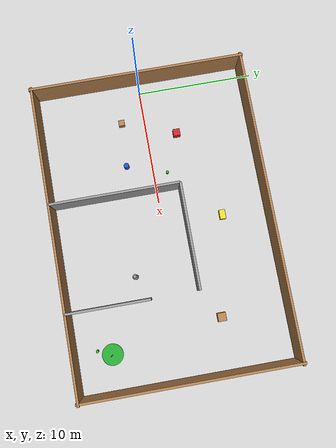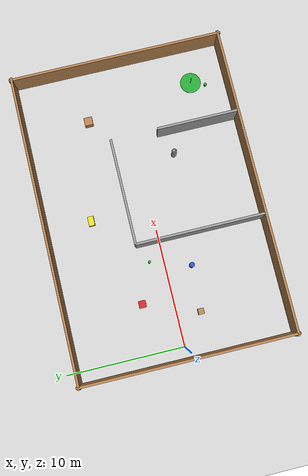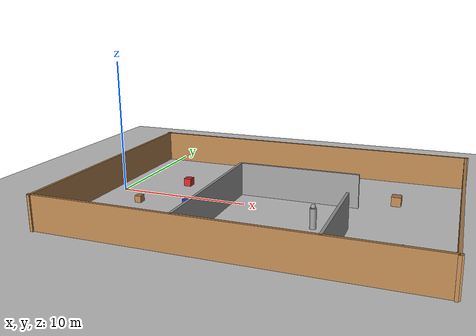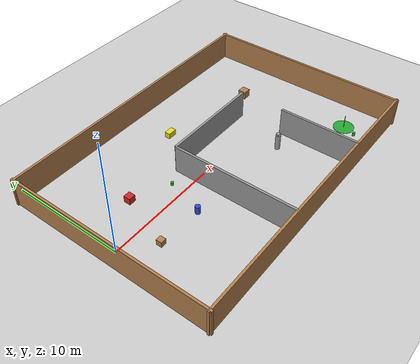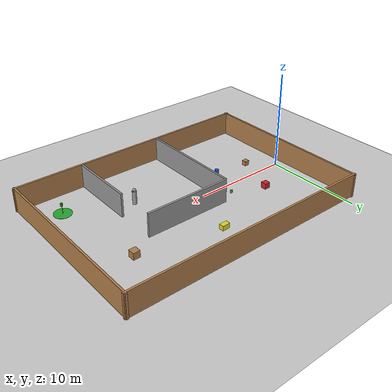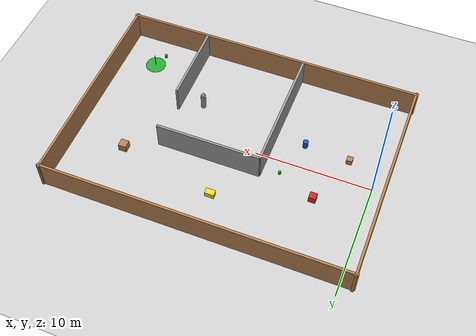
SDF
<?xml version="1.0"?>
<sdf version="1.6">
  <world name="vlbot_warehouse">

    <physics name="default_physics" default="true" type="ode">
      <max_step_size>0.002</max_step_size>
      <real_time_factor>1.0</real_time_factor>
      <real_time_update_rate>500</real_time_update_rate>
    </physics>

    <scene>
      <ambient>0.48 0.48 0.50 1</ambient>
      <background>0.62 0.70 0.78 1</background>
      <shadows>true</shadows>
    </scene>

    <light type="directional" name="sun">
      <cast_shadows>true</cast_shadows>
      <pose>0 0 12 0 0 0</pose>
      <diffuse>0.95 0.95 0.90 1</diffuse>
      <specular>0.2 0.2 0.2 1</specular>
      <attenuation>
        <range>1000</range>
        <constant>0.9</constant>
        <linear>0.01</linear>
        <quadratic>0.001</quadratic>
      </attenuation>
      <direction>-0.35 0.22 -0.91</direction>
    </light>

    <!-- 仓库顶灯：4 盏，保证相机画面亮度稳定 -->
    <light type="point" name="lamp_1"><pose>4 4 4.2 0 0 0</pose>
      <diffuse>0.75 0.75 0.72 1</diffuse><specular>0.05 0.05 0.05 1</specular>
      <attenuation><range>22</range><constant>0.7</constant><linear>0.03</linear><quadratic>0.01</quadratic></attenuation>
    </light>
    <light type="point" name="lamp_2"><pose>4 -4 4.2 0 0 0</pose>
      <diffuse>0.75 0.75 0.72 1</diffuse><specular>0.05 0.05 0.05 1</specular>
      <attenuation><range>22</range><constant>0.7</constant><linear>0.03</linear><quadratic>0.01</quadratic></attenuation>
    </light>
    <light type="point" name="lamp_3"><pose>15 4 4.2 0 0 0</pose>
      <diffuse>0.75 0.75 0.72 1</diffuse><specular>0.05 0.05 0.05 1</specular>
      <attenuation><range>22</range><constant>0.7</constant><linear>0.03</linear><quadratic>0.01</quadratic></attenuation>
    </light>
    <light type="point" name="lamp_4"><pose>15 -4 4.2 0 0 0</pose>
      <diffuse>0.75 0.75 0.72 1</diffuse><specular>0.05 0.05 0.05 1</specular>
      <attenuation><range>22</range><constant>0.7</constant><linear>0.03</linear><quadratic>0.01</quadratic></attenuation>
    </light>

    <model name="ground_plane">
      <static>true</static>
      <link name="link">
        <collision name="collision">
          <geometry><plane><normal>0 0 1</normal><size>60 60</size></plane></geometry>
          <surface><friction><ode><mu>0.8</mu><mu2>0.8</mu2></ode></friction></surface>
        </collision>
        <visual name="visual">
          <geometry><plane><normal>0 0 1</normal><size>60 60</size></plane></geometry>
          <material><script><uri>file://media/materials/scripts/gazebo.material</uri><name>Gazebo/Grey</name></script></material>
        </visual>
      </link>
    </model>

    <!-- ================= 外墙（26 x 18，中心在 (12,0)） ================= -->
    <model name="wall_south">
      <static>true</static><pose>12 -9 1.25 0 0 0</pose>
      <link name="link">
        <collision name="c"><geometry><box><size>26.4 0.2 2.5</size></box></geometry></collision>
        <visual name="v"><geometry><box><size>26.4 0.2 2.5</size></box></geometry>
          <material><script><uri>file://media/materials/scripts/gazebo.material</uri><name>Gazebo/Wood</name></script></material>
        </visual>
      </link>
    </model>
    <model name="wall_north">
      <static>true</static><pose>12 9 1.25 0 0 0</pose>
      <link name="link">
        <collision name="c"><geometry><box><size>26.4 0.2 2.5</size></box></geometry></collision>
        <visual name="v"><geometry><box><size>26.4 0.2 2.5</size></box></geometry>
          <material><script><uri>file://media/materials/scripts/gazebo.material</uri><name>Gazebo/Wood</name></script></material>
        </visual>
      </link>
    </model>
    <model name="wall_west">
      <static>true</static><pose>-1 0 1.25 0 0 0</pose>
      <link name="link">
        <collision name="c"><geometry><box><size>0.2 18.4 2.5</size></box></geometry></collision>
        <visual name="v"><geometry><box><size>0.2 18.4 2.5</size></box></geometry>
          <material><script><uri>file://media/materials/scripts/gazebo.material</uri><name>Gazebo/Wood</name></script></material>
        </visual>
      </link>
    </model>
    <model name="wall_east">
      <static>true</static><pose>25 0 1.25 0 0 0</pose>
      <link name="link">
        <collision name="c"><geometry><box><size>0.2 18.4 2.5</size></box></geometry></collision>
        <visual name="v"><geometry><box><size>0.2 18.4 2.5</size></box></geometry>
          <material><script><uri>file://media/materials/scripts/gazebo.material</uri><name>Gazebo/Wood</name></script></material>
        </visual>
      </link>
    </model>

    <!-- ================= 内部分隔墙（形成 S 形路线） ================= -->
    <!-- 竖墙 A：x=9，y 从 -9 到 2，北侧留通道 -->
    <model name="partition_a">
      <static>true</static><pose>9 -3.5 1.25 0 0 0</pose>
      <link name="link">
        <collision name="c"><geometry><box><size>0.2 11.0 2.5</size></box></geometry></collision>
        <visual name="v"><geometry><box><size>0.2 11.0 2.5</size></box></geometry>
          <material><script><uri>file://media/materials/scripts/gazebo.material</uri><name>Gazebo/Grey</name></script></material>
        </visual>
      </link>
    </model>
    <!-- 横墙 B：y=2，x 从 9 到 18，与 A 形成内角 -->
    <model name="partition_b">
      <static>true</static><pose>13.5 2 1.25 0 0 0</pose>
      <link name="link">
        <collision name="c"><geometry><box><size>9.0 0.2 2.5</size></box></geometry></collision>
        <visual name="v"><geometry><box><size>9.0 0.2 2.5</size></box></geometry>
          <material><script><uri>file://media/materials/scripts/gazebo.material</uri><name>Gazebo/Grey</name></script></material>
        </visual>
      </link>
    </model>
    <!-- 竖墙 C：x=18，y 从 -9 到 -2，北侧留通道 -->
    <model name="partition_c">
      <static>true</static><pose>18 -5.5 1.25 0 0 0</pose>
      <link name="link">
        <collision name="c"><geometry><box><size>0.2 7.0 2.5</size></box></geometry></collision>
        <visual name="v"><geometry><box><size>0.2 7.0 2.5</size></box></geometry>
          <material><script><uri>file://media/materials/scripts/gazebo.material</uri><name>Gazebo/Grey</name></script></material>
        </visual>
      </link>
    </model>

    <!-- ================= 障碍物 ================= -->
    <model name="red_box">
      <static>true</static><pose>4.2 2.6 0.30 0 0 0</pose>
      <link name="link">
        <collision name="c"><geometry><box><size>0.6 0.6 0.6</size></box></geometry></collision>
        <visual name="v"><geometry><box><size>0.6 0.6 0.6</size></box></geometry>
          <material><script><uri>file://media/materials/scripts/gazebo.material</uri><name>Gazebo/Red</name></script></material>
        </visual>
      </link>
    </model>
    <model name="blue_bin">
      <static>true</static><pose>6.4 -2.2 0.35 0 0 0</pose>
      <link name="link">
        <collision name="c"><geometry><cylinder><radius>0.22</radius><length>0.7</length></cylinder></geometry></collision>
        <visual name="v"><geometry><cylinder><radius>0.22</radius><length>0.7</length></cylinder></geometry>
          <material><script><uri>file://media/materials/scripts/gazebo.material</uri><name>Gazebo/Blue</name></script></material>
        </visual>
      </link>
    </model>
    <model name="yellow_box">
      <static>true</static><pose>12.0 5.2 0.25 0 0 0</pose>
      <link name="link">
        <collision name="c"><geometry><box><size>0.8 0.5 0.5</size></box></geometry></collision>
        <visual name="v"><geometry><box><size>0.8 0.5 0.5</size></box></geometry>
          <material><script><uri>file://media/materials/scripts/gazebo.material</uri><name>Gazebo/Yellow</name></script></material>
        </visual>
      </link>
    </model>
    <model name="person">
      <static>true</static><pose>16.0 -3.0 0 0 0 0</pose>
      <link name="link">
        <collision name="body"><pose>0 0 0.85 0 0 0</pose>
          <geometry><cylinder><radius>0.22</radius><length>1.4</length></cylinder></geometry></collision>
        <visual name="body_v"><pose>0 0 0.85 0 0 0</pose>
          <geometry><cylinder><radius>0.22</radius><length>1.4</length></cylinder></geometry>
          <material><script><uri>file://media/materials/scripts/gazebo.material</uri><name>Gazebo/Grey</name></script></material>
        </visual>
        <collision name="head"><pose>0 0 1.65 0 0 0</pose>
          <geometry><sphere><radius>0.16</radius></sphere></geometry></collision>
        <visual name="head_v"><pose>0 0 1.65 0 0 0</pose>
          <geometry><sphere><radius>0.16</radius></sphere></geometry>
          <material><script><uri>file://media/materials/scripts/gazebo.material</uri><name>Gazebo/Grey</name></script></material>
        </visual>
      </link>
    </model>
    <model name="crate_1">
      <static>true</static><pose>2.5 -2.0 0.25 0 0 0</pose>
      <link name="link">
        <collision name="c"><geometry><box><size>0.5 0.5 0.5</size></box></geometry></collision>
        <visual name="v"><geometry><box><size>0.5 0.5 0.5</size></box></geometry>
          <material><script><uri>file://media/materials/scripts/gazebo.material</uri><name>Gazebo/Wood</name></script></material>
        </visual>
      </link>
    </model>
    <model name="crate_2">
      <static>true</static><pose>20.5 3.5 0.35 0 0 0</pose>
      <link name="link">
        <collision name="c"><geometry><box><size>0.7 0.7 0.7</size></box></geometry></collision>
        <visual name="v"><geometry><box><size>0.7 0.7 0.7</size></box></geometry>
          <material><script><uri>file://media/materials/scripts/gazebo.material</uri><name>Gazebo/Wood</name></script></material>
        </visual>
      </link>
    </model>
    <model name="cone_1">
      <static>true</static><pose>7.5 1.2 0.15 0 0 0</pose>
      <link name="link">
        <collision name="c"><geometry><cylinder><radius>0.12</radius><length>0.3</length></cylinder></geometry></collision>
        <visual name="v"><geometry><cylinder><radius>0.12</radius><length>0.3</length></cylinder></geometry>
          <material><script><uri>file://media/materials/scripts/gazebo.material</uri><name>Gazebo/Green</name></script></material>
        </visual>
      </link>
    </model>
    <model name="cone_2">
      <static>true</static><pose>21.5 -7.2 0.15 0 0 0</pose>
      <link name="link">
        <collision name="c"><geometry><cylinder><radius>0.12</radius><length>0.3</length></cylinder></geometry></collision>
        <visual name="v"><geometry><cylinder><radius>0.12</radius><length>0.3</length></cylinder></geometry>
          <material><script><uri>file://media/materials/scripts/gazebo.material</uri><name>Gazebo/Green</name></script></material>
        </visual>
      </link>
    </model>

    <!-- 目标点标记：只有 visual、没有 collision，
         所以激光雷达/深度相机都看不见它，纯粹给人做参考 -->
    <model name="goal_marker">
      <static>true</static><pose>22 -6 0.012 0 0 0</pose>
      <link name="link">
        <visual name="ring">
          <geometry><cylinder><radius>0.9</radius><length>0.02</length></cylinder></geometry>
          <material><script><uri>file://media/materials/scripts/gazebo.material</uri><name>Gazebo/Green</name></script></material>
        </visual>
        <visual name="pole">
          <pose>0 0 0.6 0 0 0</pose>
          <geometry><cylinder><radius>0.02</radius><length>1.2</length></cylinder></geometry>
          <material><script><uri>file://media/materials/scripts/gazebo.material</uri><name>Gazebo/Green</name></script></material>
        </visual>
      </link>
    </model>

  </world>
</sdf>
